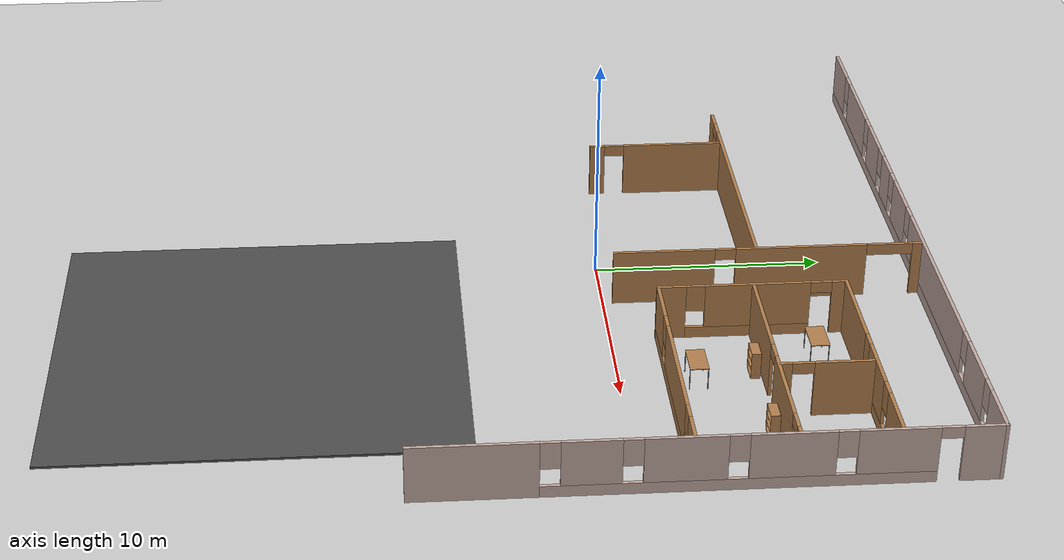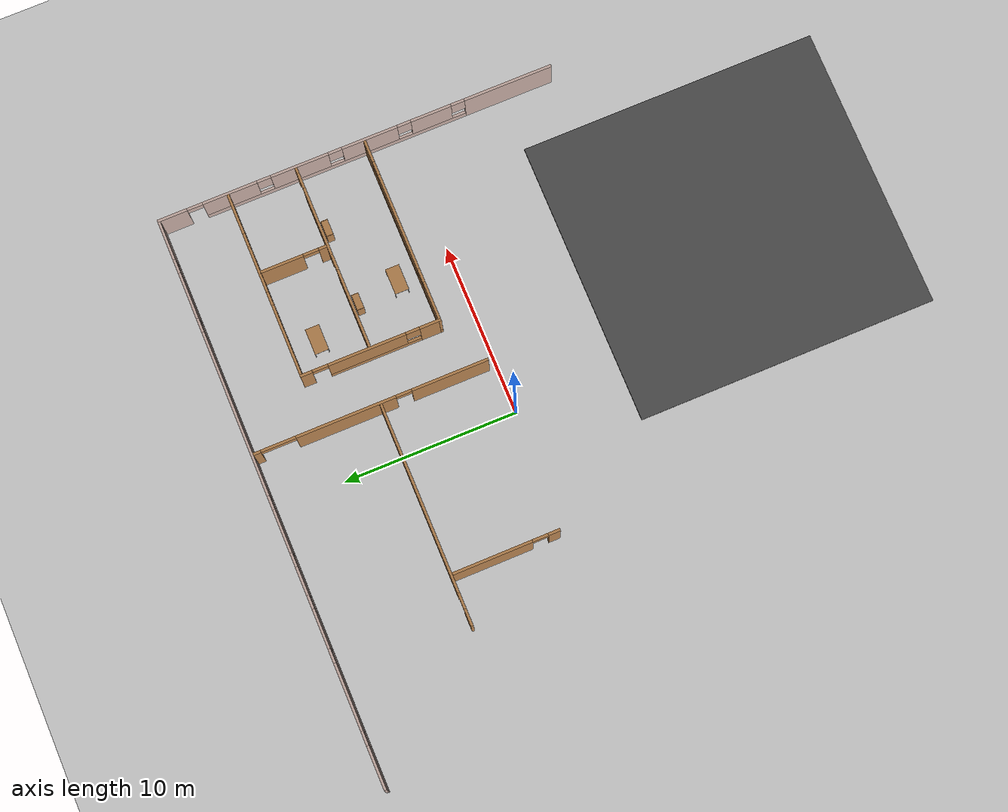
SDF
<sdf version="1.7">
 <world name="default">
  <model name="ground_plane">
   <static>1</static>
   <link name="link">
    <collision name="collision">
     <geometry><plane><normal>0 0 1</normal><size>100 100</size></plane></geometry>
     <surface>
      <contact><collide_bitmask>65535</collide_bitmask></contact>
      <friction><ode><mu>100</mu><mu2>50</mu2></ode></friction>
     </surface>
    </collision>
    <visual name="visual">
     <cast_shadows>0</cast_shadows>
     <geometry><plane><normal>0 0 1</normal><size>100 100</size></plane></geometry>
     <material>
      <script><uri>file://media/materials/scripts/gazebo.material</uri><name>Gazebo/Grey</name></script>
     </material>
    </visual>
   </link>
  </model>
  <model name="Office">
   <pose>0.30406 -0.9941 0 0 -0 0</pose>
   <link name="Wall_28">
    <pose>10.925 3 0 0 -0 3.14159</pose>
    <visual name="Wall_28_Visual_0">
     <pose>-4.84691 0 1.25 0 -0 0</pose>
     <geometry><box><size>1.30617 0.15 2.5</size></box></geometry>
     <material>
      <script><uri>file://media/materials/scripts/gazebo.material</uri><name>Gazebo/Wood</name></script>
      <ambient>1 1 1 1</ambient>
     </material>
     <meta><layer>0</layer></meta>
    </visual>
    <collision name="Wall_28_Collision_0">
     <geometry><box><size>1.30617 0.15 2.5</size></box></geometry>
     <pose>-4.84691 0 1.25 0 -0 0</pose>
    </collision>
    <visual name="Wall_28_Visual_1">
     <pose>0.653086 0 0.25 0 -0 0</pose>
     <geometry><box><size>9.69383 0.15 0.5</size></box></geometry>
     <material>
      <script><uri>file://media/materials/scripts/gazebo.material</uri><name>Gazebo/Wood</name></script>
      <ambient>1 1 1 1</ambient>
     </material>
     <meta><layer>0</layer></meta>
    </visual>
    <collision name="Wall_28_Collision_1">
     <geometry><box><size>9.69383 0.15 0.5</size></box></geometry>
     <pose>0.653086 0 0.25 0 -0 0</pose>
    </collision>
    <visual name="Wall_28_Visual_2">
     <pose>-0.525148 0 1.5 0 -0 0</pose>
     <geometry><box><size>5.73736 0.15 2</size></box></geometry>
     <material>
      <script><uri>file://media/materials/scripts/gazebo.material</uri><name>Gazebo/Wood</name></script>
      <ambient>1 1 1 1</ambient>
     </material>
     <meta><layer>0</layer></meta>
    </visual>
    <collision name="Wall_28_Collision_2">
     <geometry><box><size>5.73736 0.15 2</size></box></geometry>
     <pose>-0.525148 0 1.5 0 -0 0</pose>
    </collision>
    <visual name="Wall_28_Visual_3">
     <pose>4.32177 0 1.5 0 -0 0</pose>
     <geometry><box><size>2.35647 0.15 2</size></box></geometry>
     <material>
      <script><uri>file://media/materials/scripts/gazebo.material</uri><name>Gazebo/Wood</name></script>
      <ambient>1 1 1 1</ambient>
     </material>
     <meta><layer>0</layer></meta>
    </visual>
    <collision name="Wall_28_Collision_3">
     <geometry><box><size>2.35647 0.15 2</size></box></geometry>
     <pose>4.32177 0 1.5 0 -0 0</pose>
    </collision>
    <visual name="Wall_28_Visual_4">
     <pose>-3.79383 0 1.9 0 -0 0</pose>
     <geometry><box><size>0.8 0.15 1.2</size></box></geometry>
     <material>
      <script><uri>file://media/materials/scripts/gazebo.material</uri><name>Gazebo/Wood</name></script>
      <ambient>1 1 1 1</ambient>
     </material>
     <meta><layer>0</layer></meta>
    </visual>
    <collision name="Wall_28_Collision_4">
     <geometry><box><size>0.8 0.15 1.2</size></box></geometry>
     <pose>-3.79383 0 1.9 0 -0 0</pose>
    </collision>
    <visual name="Wall_28_Visual_5">
     <pose>2.74353 0 1.9 0 -0 0</pose>
     <geometry><box><size>0.8 0.15 1.2</size></box></geometry>
     <material>
      <script><uri>file://media/materials/scripts/gazebo.material</uri><name>Gazebo/Wood</name></script>
      <ambient>1 1 1 1</ambient>
     </material>
     <meta><layer>0</layer></meta>
    </visual>
    <collision name="Wall_28_Collision_5">
     <geometry><box><size>0.8 0.15 1.2</size></box></geometry>
     <pose>2.74353 0 1.9 0 -0 0</pose>
    </collision>
   </link>
   <link name="Wall_29">
    <pose>5.5 7 0 0 -0 1.5708</pose>
    <visual name="Wall_29_Visual_0">
     <pose>-3.44549 0 1.25 0 -0 0</pose>
     <geometry><box><size>1.25902 0.15 2.5</size></box></geometry>
     <material>
      <script><uri>file://media/materials/scripts/gazebo.material</uri><name>Gazebo/Wood</name></script>
      <ambient>1 1 1 1</ambient>
     </material>
     <meta><layer>0</layer></meta>
    </visual>
    <collision name="Wall_29_Collision_0">
     <geometry><box><size>1.25902 0.15 2.5</size></box></geometry>
     <pose>-3.44549 0 1.25 0 -0 0</pose>
    </collision>
    <visual name="Wall_29_Visual_1">
     <pose>3.72696 0 1.25 0 -0 0</pose>
     <geometry><box><size>0.696084 0.15 2.5</size></box></geometry>
     <material>
      <script><uri>file://media/materials/scripts/gazebo.material</uri><name>Gazebo/Wood</name></script>
      <ambient>1 1 1 1</ambient>
     </material>
     <meta><layer>0</layer></meta>
    </visual>
    <collision name="Wall_29_Collision_1">
     <geometry><box><size>0.696084 0.15 2.5</size></box></geometry>
     <pose>3.72696 0 1.25 0 -0 0</pose>
    </collision>
    <visual name="Wall_29_Visual_2">
     <pose>-0.168534 0 0.25 0 -0 0</pose>
     <geometry><box><size>5.2949 0.15 0.5</size></box></geometry>
     <material>
      <script><uri>file://media/materials/scripts/gazebo.material</uri><name>Gazebo/Wood</name></script>
      <ambient>1 1 1 1</ambient>
     </material>
     <meta><layer>0</layer></meta>
    </visual>
    <collision name="Wall_29_Collision_2">
     <geometry><box><size>5.2949 0.15 0.5</size></box></geometry>
     <pose>-0.168534 0 0.25 0 -0 0</pose>
    </collision>
    <visual name="Wall_29_Visual_3">
     <pose>0.231466 0 1.5 0 -0 0</pose>
     <geometry><box><size>4.4949 0.15 2</size></box></geometry>
     <material>
      <script><uri>file://media/materials/scripts/gazebo.material</uri><name>Gazebo/Wood</name></script>
      <ambient>1 1 1 1</ambient>
     </material>
     <meta><layer>0</layer></meta>
    </visual>
    <collision name="Wall_29_Collision_3">
     <geometry><box><size>4.4949 0.15 2</size></box></geometry>
     <pose>0.231466 0 1.5 0 -0 0</pose>
    </collision>
    <visual name="Wall_29_Visual_4">
     <pose>-2.41598 0 1.9 0 -0 0</pose>
     <geometry><box><size>0.8 0.15 1.2</size></box></geometry>
     <material>
      <script><uri>file://media/materials/scripts/gazebo.material</uri><name>Gazebo/Wood</name></script>
      <ambient>1 1 1 1</ambient>
     </material>
     <meta><layer>0</layer></meta>
    </visual>
    <collision name="Wall_29_Collision_4">
     <geometry><box><size>0.8 0.15 1.2</size></box></geometry>
     <pose>-2.41598 0 1.9 0 -0 0</pose>
    </collision>
    <visual name="Wall_29_Visual_5">
     <pose>2.92892 0 2.25 0 -0 0</pose>
     <geometry><box><size>0.9 0.15 0.5</size></box></geometry>
     <material>
      <script><uri>file://media/materials/scripts/gazebo.material</uri><name>Gazebo/Wood</name></script>
      <ambient>1 1 1 1</ambient>
     </material>
     <meta><layer>0</layer></meta>
    </visual>
    <collision name="Wall_29_Collision_5">
     <geometry><box><size>0.9 0.15 0.5</size></box></geometry>
     <pose>2.92892 0 2.25 0 -0 0</pose>
    </collision>
   </link>
   <link name="Wall_3">
    <pose>16.5 3.5 0 0 -0 1.5708</pose>
    <visual name="Wall_3_Visual_0">
     <pose>-8.99285 0 1.25 0 -0 0</pose>
     <geometry><box><size>5.16431 0.15 2.5</size></box></geometry>
     <material>
      <script><uri>file://media/materials/scripts/gazebo.material</uri><name>Gazebo/Grey</name></script>
      <ambient>0.760784 0.662745 0.627451 1</ambient>
     </material>
     <meta><layer>0</layer></meta>
    </visual>
    <collision name="Wall_3_Collision_0">
     <geometry><box><size>5.16431 0.15 2.5</size></box></geometry>
     <pose>-8.99285 0 1.25 0 -0 0</pose>
    </collision>
    <visual name="Wall_3_Visual_1">
     <pose>10.7143 0 1.25 0 -0 0</pose>
     <geometry><box><size>1.72148 0.15 2.5</size></box></geometry>
     <material>
      <script><uri>file://media/materials/scripts/gazebo.material</uri><name>Gazebo/Grey</name></script>
      <ambient>0.760784 0.662745 0.627451 1</ambient>
     </material>
     <meta><layer>0</layer></meta>
    </visual>
    <collision name="Wall_3_Collision_1">
     <geometry><box><size>1.72148 0.15 2.5</size></box></geometry>
     <pose>10.7143 0 1.25 0 -0 0</pose>
    </collision>
    <visual name="Wall_3_Visual_2">
     <pose>1.27141 0 0.25 0 -0 0</pose>
     <geometry><box><size>15.3642 0.15 0.5</size></box></geometry>
     <material>
      <script><uri>file://media/materials/scripts/gazebo.material</uri><name>Gazebo/Grey</name></script>
      <ambient>0.760784 0.662745 0.627451 1</ambient>
     </material>
     <meta><layer>0</layer></meta>
    </visual>
    <collision name="Wall_3_Collision_2">
     <geometry><box><size>15.3642 0.15 0.5</size></box></geometry>
     <pose>1.27141 0 0.25 0 -0 0</pose>
    </collision>
    <visual name="Wall_3_Visual_3">
     <pose>-4.42189 0 1.5 0 -0 0</pose>
     <geometry><box><size>2.3776 0.15 2</size></box></geometry>
     <material>
      <script><uri>file://media/materials/scripts/gazebo.material</uri><name>Gazebo/Grey</name></script>
      <ambient>0.760784 0.662745 0.627451 1</ambient>
     </material>
     <meta><layer>0</layer></meta>
    </visual>
    <collision name="Wall_3_Collision_3">
     <geometry><box><size>2.3776 0.15 2</size></box></geometry>
     <pose>-4.42189 0 1.5 0 -0 0</pose>
    </collision>
    <visual name="Wall_3_Visual_4">
     <pose>-0.80608 0 1.5 0 -0 0</pose>
     <geometry><box><size>3.25401 0.15 2</size></box></geometry>
     <material>
      <script><uri>file://media/materials/scripts/gazebo.material</uri><name>Gazebo/Grey</name></script>
      <ambient>0.760784 0.662745 0.627451 1</ambient>
     </material>
     <meta><layer>0</layer></meta>
    </visual>
    <collision name="Wall_3_Collision_4">
     <geometry><box><size>3.25401 0.15 2</size></box></geometry>
     <pose>-0.80608 0 1.5 0 -0 0</pose>
    </collision>
    <visual name="Wall_3_Visual_5">
     <pose>3.30392 0 1.5 0 -0 0</pose>
     <geometry><box><size>3.36599 0.15 2</size></box></geometry>
     <material>
      <script><uri>file://media/materials/scripts/gazebo.material</uri><name>Gazebo/Grey</name></script>
      <ambient>0.760784 0.662745 0.627451 1</ambient>
     </material>
     <meta><layer>0</layer></meta>
    </visual>
    <collision name="Wall_3_Collision_5">
     <geometry><box><size>3.36599 0.15 2</size></box></geometry>
     <pose>3.30392 0 1.5 0 -0 0</pose>
    </collision>
    <visual name="Wall_3_Visual_6">
     <pose>7.37022 0 1.5 0 -0 0</pose>
     <geometry><box><size>3.1666 0.15 2</size></box></geometry>
     <material>
      <script><uri>file://media/materials/scripts/gazebo.material</uri><name>Gazebo/Grey</name></script>
      <ambient>0.760784 0.662745 0.627451 1</ambient>
     </material>
     <meta><layer>0</layer></meta>
    </visual>
    <collision name="Wall_3_Collision_6">
     <geometry><box><size>3.1666 0.15 2</size></box></geometry>
     <pose>7.37022 0 1.5 0 -0 0</pose>
    </collision>
    <visual name="Wall_3_Visual_7">
     <pose>-6.01069 0 1.9 0 -0 0</pose>
     <geometry><box><size>0.8 0.15 1.2</size></box></geometry>
     <material>
      <script><uri>file://media/materials/scripts/gazebo.material</uri><name>Gazebo/Grey</name></script>
      <ambient>0.760784 0.662745 0.627451 1</ambient>
     </material>
     <meta><layer>0</layer></meta>
    </visual>
    <collision name="Wall_3_Collision_7">
     <geometry><box><size>0.8 0.15 1.2</size></box></geometry>
     <pose>-6.01069 0 1.9 0 -0 0</pose>
    </collision>
    <visual name="Wall_3_Visual_8">
     <pose>-2.83308 0 1.9 0 -0 0</pose>
     <geometry><box><size>0.8 0.15 1.2</size></box></geometry>
     <material>
      <script><uri>file://media/materials/scripts/gazebo.material</uri><name>Gazebo/Grey</name></script>
      <ambient>0.760784 0.662745 0.627451 1</ambient>
     </material>
     <meta><layer>0</layer></meta>
    </visual>
    <collision name="Wall_3_Collision_8">
     <geometry><box><size>0.8 0.15 1.2</size></box></geometry>
     <pose>-2.83308 0 1.9 0 -0 0</pose>
    </collision>
    <visual name="Wall_3_Visual_9">
     <pose>1.22093 0 1.9 0 -0 0</pose>
     <geometry><box><size>0.8 0.15 1.2</size></box></geometry>
     <material>
      <script><uri>file://media/materials/scripts/gazebo.material</uri><name>Gazebo/Grey</name></script>
      <ambient>0.760784 0.662745 0.627451 1</ambient>
     </material>
     <meta><layer>0</layer></meta>
    </visual>
    <collision name="Wall_3_Collision_9">
     <geometry><box><size>0.8 0.15 1.2</size></box></geometry>
     <pose>1.22093 0 1.9 0 -0 0</pose>
    </collision>
    <visual name="Wall_3_Visual_10">
     <pose>5.38691 0 1.9 0 -0 0</pose>
     <geometry><box><size>0.8 0.15 1.2</size></box></geometry>
     <material>
      <script><uri>file://media/materials/scripts/gazebo.material</uri><name>Gazebo/Grey</name></script>
      <ambient>0.760784 0.662745 0.627451 1</ambient>
     </material>
     <meta><layer>0</layer></meta>
    </visual>
    <collision name="Wall_3_Collision_10">
     <geometry><box><size>0.8 0.15 1.2</size></box></geometry>
     <pose>5.38691 0 1.9 0 -0 0</pose>
    </collision>
    <visual name="Wall_3_Visual_11">
     <pose>9.40352 0 2.25 0 -0 0</pose>
     <geometry><box><size>0.9 0.15 0.5</size></box></geometry>
     <material>
      <script><uri>file://media/materials/scripts/gazebo.material</uri><name>Gazebo/Grey</name></script>
      <ambient>0.760784 0.662745 0.627451 1</ambient>
     </material>
     <meta><layer>0</layer></meta>
    </visual>
    <collision name="Wall_3_Collision_11">
     <geometry><box><size>0.9 0.15 0.5</size></box></geometry>
     <pose>9.40352 0 2.25 0 -0 0</pose>
    </collision>
   </link>
   <link name="Wall_30">
    <pose>10.925 11 0 0 -0 0</pose>
    <visual name="Wall_30_Visual_0">
     <pose>-3.35391 0 1.25 0 -0 0</pose>
     <geometry><box><size>4.29219 0.15 2.5</size></box></geometry>
     <material>
      <script><uri>file://media/materials/scripts/gazebo.material</uri><name>Gazebo/Wood</name></script>
      <ambient>1 1 1 1</ambient>
     </material>
     <meta><layer>0</layer></meta>
    </visual>
    <collision name="Wall_30_Collision_0">
     <geometry><box><size>4.29219 0.15 2.5</size></box></geometry>
     <pose>-3.35391 0 1.25 0 -0 0</pose>
    </collision>
    <visual name="Wall_30_Visual_1">
     <pose>2.1461 0 0.25 0 -0 0</pose>
     <geometry><box><size>6.70781 0.15 0.5</size></box></geometry>
     <material>
      <script><uri>file://media/materials/scripts/gazebo.material</uri><name>Gazebo/Wood</name></script>
      <ambient>1 1 1 1</ambient>
     </material>
     <meta><layer>0</layer></meta>
    </visual>
    <collision name="Wall_30_Collision_1">
     <geometry><box><size>6.70781 0.15 0.5</size></box></geometry>
     <pose>2.1461 0 0.25 0 -0 0</pose>
    </collision>
    <visual name="Wall_30_Visual_2">
     <pose>0.957967 0 1.5 0 -0 0</pose>
     <geometry><box><size>2.73155 0.15 2</size></box></geometry>
     <material>
      <script><uri>file://media/materials/scripts/gazebo.material</uri><name>Gazebo/Wood</name></script>
      <ambient>1 1 1 1</ambient>
     </material>
     <meta><layer>0</layer></meta>
    </visual>
    <collision name="Wall_30_Collision_2">
     <geometry><box><size>2.73155 0.15 2</size></box></geometry>
     <pose>0.957967 0 1.5 0 -0 0</pose>
    </collision>
    <visual name="Wall_30_Visual_3">
     <pose>4.31187 0 1.5 0 -0 0</pose>
     <geometry><box><size>2.37626 0.15 2</size></box></geometry>
     <material>
      <script><uri>file://media/materials/scripts/gazebo.material</uri><name>Gazebo/Wood</name></script>
      <ambient>1 1 1 1</ambient>
     </material>
     <meta><layer>0</layer></meta>
    </visual>
    <collision name="Wall_30_Collision_3">
     <geometry><box><size>2.37626 0.15 2</size></box></geometry>
     <pose>4.31187 0 1.5 0 -0 0</pose>
    </collision>
    <visual name="Wall_30_Visual_4">
     <pose>-0.80781 0 1.9 0 -0 0</pose>
     <geometry><box><size>0.8 0.15 1.2</size></box></geometry>
     <material>
      <script><uri>file://media/materials/scripts/gazebo.material</uri><name>Gazebo/Wood</name></script>
      <ambient>1 1 1 1</ambient>
     </material>
     <meta><layer>0</layer></meta>
    </visual>
    <collision name="Wall_30_Collision_4">
     <geometry><box><size>0.8 0.15 1.2</size></box></geometry>
     <pose>-0.80781 0 1.9 0 -0 0</pose>
    </collision>
    <visual name="Wall_30_Visual_5">
     <pose>2.72374 0 1.9 0 -0 0</pose>
     <geometry><box><size>0.8 0.15 1.2</size></box></geometry>
     <material>
      <script><uri>file://media/materials/scripts/gazebo.material</uri><name>Gazebo/Wood</name></script>
      <ambient>1 1 1 1</ambient>
     </material>
     <meta><layer>0</layer></meta>
    </visual>
    <collision name="Wall_30_Collision_5">
     <geometry><box><size>0.8 0.15 1.2</size></box></geometry>
     <pose>2.72374 0 1.9 0 -0 0</pose>
    </collision>
   </link>
   <link name="Wall_32">
    <pose>2.5 8.175 0 0 -0 -1.5708</pose>
    <visual name="Wall_32_Visual_0">
     <pose>-6.5375 0 1.25 0 -0 0</pose>
     <geometry><box><size>0.425 0.15 2.5</size></box></geometry>
     <material>
      <script><uri>file://media/materials/scripts/gazebo.material</uri><name>Gazebo/Wood</name></script>
      <ambient>1 1 1 1</ambient>
     </material>
     <meta><layer>0</layer></meta>
    </visual>
    <collision name="Wall_32_Collision_0">
     <geometry><box><size>0.425 0.15 2.5</size></box></geometry>
     <pose>-6.5375 0 1.25 0 -0 0</pose>
    </collision>
    <visual name="Wall_32_Visual_1">
     <pose>-1.45325 0 1.25 0 -0 0</pose>
     <geometry><box><size>5.7435 0.15 2.5</size></box></geometry>
     <material>
      <script><uri>file://media/materials/scripts/gazebo.material</uri><name>Gazebo/Wood</name></script>
      <ambient>1 1 1 1</ambient>
     </material>
     <meta><layer>0</layer></meta>
    </visual>
    <collision name="Wall_32_Collision_1">
     <geometry><box><size>5.7435 0.15 2.5</size></box></geometry>
     <pose>-1.45325 0 1.25 0 -0 0</pose>
    </collision>
    <visual name="Wall_32_Visual_2">
     <pose>4.53425 0 1.25 0 -0 0</pose>
     <geometry><box><size>4.4315 0.15 2.5</size></box></geometry>
     <material>
      <script><uri>file://media/materials/scripts/gazebo.material</uri><name>Gazebo/Wood</name></script>
      <ambient>1 1 1 1</ambient>
     </material>
     <meta><layer>0</layer></meta>
    </visual>
    <collision name="Wall_32_Collision_2">
     <geometry><box><size>4.4315 0.15 2.5</size></box></geometry>
     <pose>4.53425 0 1.25 0 -0 0</pose>
    </collision>
    <visual name="Wall_32_Visual_3">
     <pose>-5.325 0 2.25 0 -0 0</pose>
     <geometry><box><size>2 0.15 0.5</size></box></geometry>
     <material>
      <script><uri>file://media/materials/scripts/gazebo.material</uri><name>Gazebo/Wood</name></script>
      <ambient>1 1 1 1</ambient>
     </material>
     <meta><layer>0</layer></meta>
    </visual>
    <collision name="Wall_32_Collision_3">
     <geometry><box><size>2 0.15 0.5</size></box></geometry>
     <pose>-5.325 0 2.25 0 -0 0</pose>
    </collision>
    <visual name="Wall_32_Visual_4">
     <pose>1.8685 0 2.25 0 -0 0</pose>
     <geometry><box><size>0.9 0.15 0.5</size></box></geometry>
     <material>
      <script><uri>file://media/materials/scripts/gazebo.material</uri><name>Gazebo/Wood</name></script>
      <ambient>1 1 1 1</ambient>
     </material>
     <meta><layer>0</layer></meta>
    </visual>
    <collision name="Wall_32_Collision_4">
     <geometry><box><size>0.9 0.15 0.5</size></box></geometry>
     <pose>1.8685 0 2.25 0 -0 0</pose>
    </collision>
   </link>
   <link name="Wall_34">
    <pose>-7.5 4.5 0 0 -0 1.5708</pose>
    <visual name="Wall_34_Visual_0">
     <pose>-2.73019 0 1.25 0 -0 0</pose>
     <geometry><box><size>0.689623 0.15 2.5</size></box></geometry>
     <material>
      <script><uri>file://media/materials/scripts/gazebo.material</uri><name>Gazebo/Wood</name></script>
      <ambient>1 1 1 1</ambient>
     </material>
     <meta><layer>0</layer></meta>
    </visual>
    <collision name="Wall_34_Collision_0">
     <geometry><box><size>0.689623 0.15 2.5</size></box></geometry>
     <pose>-2.73019 0 1.25 0 -0 0</pose>
    </collision>
    <visual name="Wall_34_Visual_1">
     <pose>0.794812 0 1.25 0 -0 0</pose>
     <geometry><box><size>4.56038 0.15 2.5</size></box></geometry>
     <material>
      <script><uri>file://media/materials/scripts/gazebo.material</uri><name>Gazebo/Wood</name></script>
      <ambient>1 1 1 1</ambient>
     </material>
     <meta><layer>0</layer></meta>
    </visual>
    <collision name="Wall_34_Collision_1">
     <geometry><box><size>4.56038 0.15 2.5</size></box></geometry>
     <pose>0.794812 0 1.25 0 -0 0</pose>
    </collision>
    <visual name="Wall_34_Visual_2">
     <pose>-1.93538 0 2.25 0 -0 0</pose>
     <geometry><box><size>0.9 0.15 0.5</size></box></geometry>
     <material>
      <script><uri>file://media/materials/scripts/gazebo.material</uri><name>Gazebo/Wood</name></script>
      <ambient>1 1 1 1</ambient>
     </material>
     <meta><layer>0</layer></meta>
    </visual>
    <collision name="Wall_34_Collision_2">
     <geometry><box><size>0.9 0.15 0.5</size></box></geometry>
     <pose>-1.93538 0 2.25 0 -0 0</pose>
    </collision>
   </link>
   <link name="Wall_36">
    <pose>-4 7.65 0 0 -0 0</pose>
    <visual name="Wall_36_Visual_0">
     <pose>-5.93774 0 1.25 0 -0 0</pose>
     <geometry><box><size>0.974511 0.15 2.5</size></box></geometry>
     <material>
      <script><uri>file://media/materials/scripts/gazebo.material</uri><name>Gazebo/Wood</name></script>
      <ambient>1 1 1 1</ambient>
     </material>
     <meta><layer>0</layer></meta>
    </visual>
    <collision name="Wall_36_Collision_0">
     <geometry><box><size>0.974511 0.15 2.5</size></box></geometry>
     <pose>-5.93774 0 1.25 0 -0 0</pose>
    </collision>
    <visual name="Wall_36_Visual_1">
     <pose>0.937255 0 1.25 0 -0 0</pose>
     <geometry><box><size>10.9755 0.15 2.5</size></box></geometry>
     <material>
      <script><uri>file://media/materials/scripts/gazebo.material</uri><name>Gazebo/Wood</name></script>
      <ambient>1 1 1 1</ambient>
     </material>
     <meta><layer>0</layer></meta>
    </visual>
    <collision name="Wall_36_Collision_1">
     <geometry><box><size>10.9755 0.15 2.5</size></box></geometry>
     <pose>0.937255 0 1.25 0 -0 0</pose>
    </collision>
    <visual name="Wall_36_Visual_2">
     <pose>-5.00049 0 2.25 0 -0 0</pose>
     <geometry><box><size>0.9 0.15 0.5</size></box></geometry>
     <material>
      <script><uri>file://media/materials/scripts/gazebo.material</uri><name>Gazebo/Wood</name></script>
      <ambient>1 1 1 1</ambient>
     </material>
     <meta><layer>0</layer></meta>
    </visual>
    <collision name="Wall_36_Collision_2">
     <geometry><box><size>0.9 0.15 0.5</size></box></geometry>
     <pose>-5.00049 0 2.25 0 -0 0</pose>
    </collision>
   </link>
   <link name="Wall_4">
    <pose>0 15 0 0 -0 3.14159</pose>
    <visual name="Wall_4_Visual_0">
     <pose>-15.3518 0 1.25 0 -0 0</pose>
     <geometry><box><size>2.44634 0.15 2.5</size></box></geometry>
     <material>
      <script><uri>file://media/materials/scripts/gazebo.material</uri><name>Gazebo/Grey</name></script>
      <ambient>0.760784 0.662745 0.627451 1</ambient>
     </material>
     <meta><layer>0</layer></meta>
    </visual>
    <collision name="Wall_4_Collision_0">
     <geometry><box><size>2.44634 0.15 2.5</size></box></geometry>
     <pose>-15.3518 0 1.25 0 -0 0</pose>
    </collision>
    <visual name="Wall_4_Visual_1">
     <pose>1.22317 0 0.25 0 -0 0</pose>
     <geometry><box><size>30.7037 0.15 0.5</size></box></geometry>
     <material>
      <script><uri>file://media/materials/scripts/gazebo.material</uri><name>Gazebo/Grey</name></script>
      <ambient>0.760784 0.662745 0.627451 1</ambient>
     </material>
     <meta><layer>0</layer></meta>
    </visual>
    <collision name="Wall_4_Collision_1">
     <geometry><box><size>30.7037 0.15 0.5</size></box></geometry>
     <pose>1.22317 0 0.25 0 -0 0</pose>
    </collision>
    <visual name="Wall_4_Visual_2">
     <pose>-11.9571 0 1.5 0 -0 0</pose>
     <geometry><box><size>2.74312 0.15 2</size></box></geometry>
     <material>
      <script><uri>file://media/materials/scripts/gazebo.material</uri><name>Gazebo/Grey</name></script>
      <ambient>0.760784 0.662745 0.627451 1</ambient>
     </material>
     <meta><layer>0</layer></meta>
    </visual>
    <collision name="Wall_4_Collision_2">
     <geometry><box><size>2.74312 0.15 2</size></box></geometry>
     <pose>-11.9571 0 1.5 0 -0 0</pose>
    </collision>
    <visual name="Wall_4_Visual_3">
     <pose>-4.95138 0 1.5 0 -0 0</pose>
     <geometry><box><size>9.66832 0.15 2</size></box></geometry>
     <material>
      <script><uri>file://media/materials/scripts/gazebo.material</uri><name>Gazebo/Grey</name></script>
      <ambient>0.760784 0.662745 0.627451 1</ambient>
     </material>
     <meta><layer>0</layer></meta>
    </visual>
    <collision name="Wall_4_Collision_3">
     <geometry><box><size>9.66832 0.15 2</size></box></geometry>
     <pose>-4.95138 0 1.5 0 -0 0</pose>
    </collision>
    <visual name="Wall_4_Visual_4">
     <pose>1.93356 0 1.5 0 -0 0</pose>
     <geometry><box><size>2.50155 0.15 2</size></box></geometry>
     <material>
      <script><uri>file://media/materials/scripts/gazebo.material</uri><name>Gazebo/Grey</name></script>
      <ambient>0.760784 0.662745 0.627451 1</ambient>
     </material>
     <meta><layer>0</layer></meta>
    </visual>
    <collision name="Wall_4_Collision_4">
     <geometry><box><size>2.50155 0.15 2</size></box></geometry>
     <pose>1.93356 0 1.5 0 -0 0</pose>
    </collision>
    <visual name="Wall_4_Visual_5">
     <pose>4.79221 0 1.5 0 -0 0</pose>
     <geometry><box><size>1.61577 0.15 2</size></box></geometry>
     <material>
      <script><uri>file://media/materials/scripts/gazebo.material</uri><name>Gazebo/Grey</name></script>
      <ambient>0.760784 0.662745 0.627451 1</ambient>
     </material>
     <meta><layer>0</layer></meta>
    </visual>
    <collision name="Wall_4_Collision_5">
     <geometry><box><size>1.61577 0.15 2</size></box></geometry>
     <pose>4.79221 0 1.5 0 -0 0</pose>
    </collision>
    <visual name="Wall_4_Visual_6">
     <pose>7.53008 0 1.5 0 -0 0</pose>
     <geometry><box><size>2.25997 0.15 2</size></box></geometry>
     <material>
      <script><uri>file://media/materials/scripts/gazebo.material</uri><name>Gazebo/Grey</name></script>
      <ambient>0.760784 0.662745 0.627451 1</ambient>
     </material>
     <meta><layer>0</layer></meta>
    </visual>
    <collision name="Wall_4_Collision_6">
     <geometry><box><size>2.25997 0.15 2</size></box></geometry>
     <pose>7.53008 0 1.5 0 -0 0</pose>
    </collision>
    <visual name="Wall_4_Visual_7">
     <pose>11.3752 0 1.5 0 -0 0</pose>
     <geometry><box><size>3.83029 0.15 2</size></box></geometry>
     <material>
      <script><uri>file://media/materials/scripts/gazebo.material</uri><name>Gazebo/Grey</name></script>
      <ambient>0.760784 0.662745 0.627451 1</ambient>
     </material>
     <meta><layer>0</layer></meta>
    </visual>
    <collision name="Wall_4_Collision_7">
     <geometry><box><size>3.83029 0.15 2</size></box></geometry>
     <pose>11.3752 0 1.5 0 -0 0</pose>
    </collision>
    <visual name="Wall_4_Visual_8">
     <pose>15.3327 0 1.5 0 -0 0</pose>
     <geometry><box><size>2.48464 0.15 2</size></box></geometry>
     <material>
      <script><uri>file://media/materials/scripts/gazebo.material</uri><name>Gazebo/Grey</name></script>
      <ambient>0.760784 0.662745 0.627451 1</ambient>
     </material>
     <meta><layer>0</layer></meta>
    </visual>
    <collision name="Wall_4_Collision_8">
     <geometry><box><size>2.48464 0.15 2</size></box></geometry>
     <pose>15.3327 0 1.5 0 -0 0</pose>
    </collision>
    <visual name="Wall_4_Visual_9">
     <pose>-13.7287 0 1.9 0 -0 0</pose>
     <geometry><box><size>0.8 0.15 1.2</size></box></geometry>
     <material>
      <script><uri>file://media/materials/scripts/gazebo.material</uri><name>Gazebo/Grey</name></script>
      <ambient>0.760784 0.662745 0.627451 1</ambient>
     </material>
     <meta><layer>0</layer></meta>
    </visual>
    <collision name="Wall_4_Collision_9">
     <geometry><box><size>0.8 0.15 1.2</size></box></geometry>
     <pose>-13.7287 0 1.9 0 -0 0</pose>
    </collision>
    <visual name="Wall_4_Visual_10">
     <pose>-10.1855 0 1.9 0 -0 0</pose>
     <geometry><box><size>0.8 0.15 1.2</size></box></geometry>
     <material>
      <script><uri>file://media/materials/scripts/gazebo.material</uri><name>Gazebo/Grey</name></script>
      <ambient>0.760784 0.662745 0.627451 1</ambient>
     </material>
     <meta><layer>0</layer></meta>
    </visual>
    <collision name="Wall_4_Collision_10">
     <geometry><box><size>0.8 0.15 1.2</size></box></geometry>
     <pose>-10.1855 0 1.9 0 -0 0</pose>
    </collision>
    <visual name="Wall_4_Visual_11">
     <pose>0.282784 0 1.9 0 -0 0</pose>
     <geometry><box><size>0.8 0.15 1.2</size></box></geometry>
     <material>
      <script><uri>file://media/materials/scripts/gazebo.material</uri><name>Gazebo/Grey</name></script>
      <ambient>0.760784 0.662745 0.627451 1</ambient>
     </material>
     <meta><layer>0</layer></meta>
    </visual>
    <collision name="Wall_4_Collision_11">
     <geometry><box><size>0.8 0.15 1.2</size></box></geometry>
     <pose>0.282784 0 1.9 0 -0 0</pose>
    </collision>
    <visual name="Wall_4_Visual_12">
     <pose>3.58433 0 1.9 0 -0 0</pose>
     <geometry><box><size>0.8 0.15 1.2</size></box></geometry>
     <material>
      <script><uri>file://media/materials/scripts/gazebo.material</uri><name>Gazebo/Grey</name></script>
      <ambient>0.760784 0.662745 0.627451 1</ambient>
     </material>
     <meta><layer>0</layer></meta>
    </visual>
    <collision name="Wall_4_Collision_12">
     <geometry><box><size>0.8 0.15 1.2</size></box></geometry>
     <pose>3.58433 0 1.9 0 -0 0</pose>
    </collision>
    <visual name="Wall_4_Visual_13">
     <pose>6.0001 0 1.9 0 -0 0</pose>
     <geometry><box><size>0.8 0.15 1.2</size></box></geometry>
     <material>
      <script><uri>file://media/materials/scripts/gazebo.material</uri><name>Gazebo/Grey</name></script>
      <ambient>0.760784 0.662745 0.627451 1</ambient>
     </material>
     <meta><layer>0</layer></meta>
    </visual>
    <collision name="Wall_4_Collision_13">
     <geometry><box><size>0.8 0.15 1.2</size></box></geometry>
     <pose>6.0001 0 1.9 0 -0 0</pose>
    </collision>
    <visual name="Wall_4_Visual_14">
     <pose>9.06007 0 1.9 0 -0 0</pose>
     <geometry><box><size>0.8 0.15 1.2</size></box></geometry>
     <material>
      <script><uri>file://media/materials/scripts/gazebo.material</uri><name>Gazebo/Grey</name></script>
      <ambient>0.760784 0.662745 0.627451 1</ambient>
     </material>
     <meta><layer>0</layer></meta>
    </visual>
    <collision name="Wall_4_Collision_14">
     <geometry><box><size>0.8 0.15 1.2</size></box></geometry>
     <pose>9.06007 0 1.9 0 -0 0</pose>
    </collision>
    <visual name="Wall_4_Visual_15">
     <pose>13.6904 0 1.9 0 -0 0</pose>
     <geometry><box><size>0.8 0.15 1.2</size></box></geometry>
     <material>
      <script><uri>file://media/materials/scripts/gazebo.material</uri><name>Gazebo/Grey</name></script>
      <ambient>0.760784 0.662745 0.627451 1</ambient>
     </material>
     <meta><layer>0</layer></meta>
    </visual>
    <collision name="Wall_4_Collision_15">
     <geometry><box><size>0.8 0.15 1.2</size></box></geometry>
     <pose>13.6904 0 1.9 0 -0 0</pose>
    </collision>
   </link>
   <link name="Wall_51">
    <pose>11 7.036 0 0 -0 0</pose>
    <visual name="Wall_51_Visual_0">
     <pose>-3.1003 0 1.25 0 -0 0</pose>
     <geometry><box><size>4.6494 0.15 2.5</size></box></geometry>
     <material>
      <script><uri>file://media/materials/scripts/gazebo.material</uri><name>Gazebo/Wood</name></script>
      <ambient>1 1 1 1</ambient>
     </material>
     <meta><layer>0</layer></meta>
    </visual>
    <collision name="Wall_51_Collision_0">
     <geometry><box><size>4.6494 0.15 2.5</size></box></geometry>
     <pose>-3.1003 0 1.25 0 -0 0</pose>
    </collision>
    <visual name="Wall_51_Visual_1">
     <pose>2.16176 0 1.25 0 -0 0</pose>
     <geometry><box><size>4.07471 0.15 2.5</size></box></geometry>
     <material>
      <script><uri>file://media/materials/scripts/gazebo.material</uri><name>Gazebo/Wood</name></script>
      <ambient>1 1 1 1</ambient>
     </material>
     <meta><layer>0</layer></meta>
    </visual>
    <collision name="Wall_51_Collision_1">
     <geometry><box><size>4.07471 0.15 2.5</size></box></geometry>
     <pose>2.16176 0 1.25 0 -0 0</pose>
    </collision>
    <visual name="Wall_51_Visual_2">
     <pose>5.26206 0 1.25 0 -0 0</pose>
     <geometry><box><size>0.325885 0.15 2.5</size></box></geometry>
     <material>
      <script><uri>file://media/materials/scripts/gazebo.material</uri><name>Gazebo/Wood</name></script>
      <ambient>1 1 1 1</ambient>
     </material>
     <meta><layer>0</layer></meta>
    </visual>
    <collision name="Wall_51_Collision_2">
     <geometry><box><size>0.325885 0.15 2.5</size></box></geometry>
     <pose>5.26206 0 1.25 0 -0 0</pose>
    </collision>
    <visual name="Wall_51_Visual_3">
     <pose>-0.325597 0 2.25 0 -0 0</pose>
     <geometry><box><size>0.9 0.15 0.5</size></box></geometry>
     <material>
      <script><uri>file://media/materials/scripts/gazebo.material</uri><name>Gazebo/Wood</name></script>
      <ambient>1 1 1 1</ambient>
     </material>
     <meta><layer>0</layer></meta>
    </visual>
    <collision name="Wall_51_Collision_3">
     <geometry><box><size>0.9 0.15 0.5</size></box></geometry>
     <pose>-0.325597 0 2.25 0 -0 0</pose>
    </collision>
    <visual name="Wall_51_Visual_4">
     <pose>4.64912 0 2.25 0 -0 0</pose>
     <geometry><box><size>0.9 0.15 0.5</size></box></geometry>
     <material>
      <script><uri>file://media/materials/scripts/gazebo.material</uri><name>Gazebo/Wood</name></script>
      <ambient>1 1 1 1</ambient>
     </material>
     <meta><layer>0</layer></meta>
    </visual>
    <collision name="Wall_51_Collision_4">
     <geometry><box><size>0.9 0.15 0.5</size></box></geometry>
     <pose>4.64912 0 2.25 0 -0 0</pose>
    </collision>
   </link>
   <link name="Wall_53">
    <pose>11.6817 8.96252 0 0 -0 1.5708</pose>
    <visual name="Wall_53_Visual_0">
     <pose>-1.69286 0 1.25 0 -0 0</pose>
     <geometry><box><size>0.614284 0.15 2.5</size></box></geometry>
     <material>
      <script><uri>file://media/materials/scripts/gazebo.material</uri><name>Gazebo/Wood</name></script>
      <ambient>1 1 1 1</ambient>
     </material>
     <meta><layer>0</layer></meta>
    </visual>
    <collision name="Wall_53_Collision_0">
     <geometry><box><size>0.614284 0.15 2.5</size></box></geometry>
     <pose>-1.69286 0 1.25 0 -0 0</pose>
    </collision>
    <visual name="Wall_53_Visual_1">
     <pose>0.757142 0 1.25 0 -0 0</pose>
     <geometry><box><size>2.48572 0.15 2.5</size></box></geometry>
     <material>
      <script><uri>file://media/materials/scripts/gazebo.material</uri><name>Gazebo/Wood</name></script>
      <ambient>1 1 1 1</ambient>
     </material>
     <meta><layer>0</layer></meta>
    </visual>
    <collision name="Wall_53_Collision_1">
     <geometry><box><size>2.48572 0.15 2.5</size></box></geometry>
     <pose>0.757142 0 1.25 0 -0 0</pose>
    </collision>
    <visual name="Wall_53_Visual_2">
     <pose>-0.935716 0 2.25 0 -0 0</pose>
     <geometry><box><size>0.9 0.15 0.5</size></box></geometry>
     <material>
      <script><uri>file://media/materials/scripts/gazebo.material</uri><name>Gazebo/Wood</name></script>
      <ambient>1 1 1 1</ambient>
     </material>
     <meta><layer>0</layer></meta>
    </visual>
    <collision name="Wall_53_Collision_2">
     <geometry><box><size>0.9 0.15 0.5</size></box></geometry>
     <pose>-0.935716 0 2.25 0 -0 0</pose>
    </collision>
   </link>
   <static>1</static>
  </model>
  <model name="asphalt_plane">
   <static>1</static>
   <link name="link">
    <collision name="collision"><geometry><box><size>16.6553 17.3976 0.1</size></box></geometry></collision>
    <visual name="visual">
     <cast_shadows>0</cast_shadows>
     <geometry><box><size>16.6553 17.3976 0.1</size></box></geometry>
     <material>
      <script>
       <uri>model://asphalt_plane/materials/scripts</uri>
       <uri>model://asphalt_plane/materials/textures</uri>
       <name>vrc/asphalt</name>
      </script>
     </material>
    </visual>
   </link>
   <pose>5.32516 -14.8382 0 0 -0 0</pose>
  </model>
  <model name="table_clone_2">
   <static>1</static>
   <link name="link">
    <collision name="surface">
     <pose>0 0 1 0 -0 0</pose>
     <geometry><box><size>1.5 0.8 0.03</size></box></geometry>
     <surface><friction><ode><mu>0.6</mu><mu2>0.6</mu2></ode></friction></surface>
    </collision>
    <visual name="visual1">
     <pose>0 0 1 0 -0 0</pose>
     <geometry><box><size>1.5 0.8 0.03</size></box></geometry>
     <material>
      <script><uri>file://media/materials/scripts/gazebo.material</uri><name>Gazebo/Wood</name></script>
     </material>
    </visual>
    <collision name="front_left_leg">
     <pose>0.68 0.38 0.5 0 -0 0</pose>
     <geometry><cylinder><radius>0.02</radius><length>1</length></cylinder></geometry>
    </collision>
    <visual name="front_left_legv">
     <pose>0.68 0.38 0.5 0 -0 0</pose>
     <geometry><cylinder><radius>0.02</radius><length>1</length></cylinder></geometry>
     <material>
      <script><uri>file://media/materials/scripts/gazebo.material</uri><name>Gazebo/Grey</name></script>
     </material>
    </visual>
    <collision name="front_right_leg">
     <pose>0.68 -0.38 0.5 0 -0 0</pose>
     <geometry><cylinder><radius>0.02</radius><length>1</length></cylinder></geometry>
    </collision>
    <visual name="front_right_legv">
     <pose>0.68 -0.38 0.5 0 -0 0</pose>
     <geometry><cylinder><radius>0.02</radius><length>1</length></cylinder></geometry>
     <material>
      <script><uri>file://media/materials/scripts/gazebo.material</uri><name>Gazebo/Grey</name></script>
     </material>
    </visual>
    <collision name="back_right_leg">
     <pose>-0.68 -0.38 0.5 0 -0 0</pose>
     <geometry><cylinder><radius>0.02</radius><length>1</length></cylinder></geometry>
    </collision>
    <visual name="back_right_legv">
     <pose>-0.68 -0.38 0.5 0 -0 0</pose>
     <geometry><cylinder><radius>0.02</radius><length>1</length></cylinder></geometry>
     <material>
      <script><uri>file://media/materials/scripts/gazebo.material</uri><name>Gazebo/Grey</name></script>
     </material>
    </visual>
    <collision name="back_left_leg">
     <pose>-0.68 0.38 0.5 0 -0 0</pose>
     <geometry><cylinder><radius>0.02</radius><length>1</length></cylinder></geometry>
    </collision>
    <visual name="back_left_legv">
     <pose>-0.68 0.38 0.5 0 -0 0</pose>
     <geometry><cylinder><radius>0.02</radius><length>1</length></cylinder></geometry>
     <material>
      <script><uri>file://media/materials/scripts/gazebo.material</uri><name>Gazebo/Grey</name></script>
     </material>
    </visual>
   </link>
   <pose>9.18065 3.22722 0 0 -0 0</pose>
  </model>
  <model name="bookshelf">
   <static>1</static>
   <link name="link">
    <inertial><mass>1</mass></inertial>
    <collision name="back">
     <pose>0 0.005 0.6 0 -0 0</pose>
     <geometry><box><size>0.9 0.01 1.2</size></box></geometry>
    </collision>
    <visual name="visual1">
     <pose>0 0.005 0.6 0 -0 0</pose>
     <geometry><box><size>0.9 0.01 1.2</size></box></geometry>
     <material>
      <script><uri>file://media/materials/scripts/gazebo.material</uri><name>Gazebo/Wood</name></script>
     </material>
    </visual>
    <collision name="left_side">
     <pose>0.45 -0.195 0.6 0 -0 0</pose>
     <geometry><box><size>0.02 0.4 1.2</size></box></geometry>
    </collision>
    <visual name="visual2">
     <pose>0.45 -0.195 0.6 0 -0 0</pose>
     <geometry><box><size>0.02 0.4 1.2</size></box></geometry>
     <material>
      <script><uri>file://media/materials/scripts/gazebo.material</uri><name>Gazebo/Wood</name></script>
     </material>
    </visual>
    <collision name="right_side">
     <pose>-0.45 -0.195 0.6 0 -0 0</pose>
     <geometry><box><size>0.02 0.4 1.2</size></box></geometry>
    </collision>
    <visual name="visual3">
     <pose>-0.45 -0.195 0.6 0 -0 0</pose>
     <geometry><box><size>0.02 0.4 1.2</size></box></geometry>
     <material>
      <script><uri>file://media/materials/scripts/gazebo.material</uri><name>Gazebo/Wood</name></script>
     </material>
    </visual>
    <collision name="bottom">
     <pose>0 -0.195 0.03 0 -0 0</pose>
     <geometry><box><size>0.88 0.4 0.06</size></box></geometry>
    </collision>
    <visual name="visual4">
     <pose>0 -0.195 0.03 0 -0 0</pose>
     <geometry><box><size>0.88 0.4 0.06</size></box></geometry>
     <material>
      <script><uri>file://media/materials/scripts/gazebo.material</uri><name>Gazebo/Wood</name></script>
     </material>
    </visual>
    <collision name="top">
     <pose>0 -0.195 1.19 0 -0 0</pose>
     <geometry><box><size>0.88 0.4 0.02</size></box></geometry>
    </collision>
    <visual name="visual5">
     <pose>0 -0.195 1.19 0 -0 0</pose>
     <geometry><box><size>0.88 0.4 0.02</size></box></geometry>
     <material>
      <script><uri>file://media/materials/scripts/gazebo.material</uri><name>Gazebo/Wood</name></script>
     </material>
    </visual>
    <collision name="low_shelf">
     <pose>0 -0.195 0.43 0 -0 0</pose>
     <geometry><box><size>0.88 0.4 0.02</size></box></geometry>
    </collision>
    <visual name="visual6">
     <pose>0 -0.195 0.43 0 -0 0</pose>
     <geometry><box><size>0.88 0.4 0.02</size></box></geometry>
     <material>
      <script><uri>file://media/materials/scripts/gazebo.material</uri><name>Gazebo/Wood</name></script>
     </material>
    </visual>
    <collision name="high_shelf">
     <pose>0 -0.195 0.8 0 -0 0</pose>
     <geometry><box><size>0.88 0.4 0.02</size></box></geometry>
    </collision>
    <visual name="visual7">
     <pose>0 -0.195 0.8 0 -0 0</pose>
     <geometry><box><size>0.88 0.4 0.02</size></box></geometry>
     <material>
      <script><uri>file://media/materials/scripts/gazebo.material</uri><name>Gazebo/Wood</name></script>
     </material>
    </visual>
   </link>
   <pose>13.31 5.88679 0 0 -0 0</pose>
  </model>
  <model name="bookshelf_0">
   <static>1</static>
   <link name="link">
    <inertial><mass>1</mass></inertial>
    <collision name="back">
     <pose>0 0.005 0.6 0 -0 0</pose>
     <geometry><box><size>0.9 0.01 1.2</size></box></geometry>
    </collision>
    <visual name="visual1">
     <pose>0 0.005 0.6 0 -0 0</pose>
     <geometry><box><size>0.9 0.01 1.2</size></box></geometry>
     <material>
      <script><uri>file://media/materials/scripts/gazebo.material</uri><name>Gazebo/Wood</name></script>
     </material>
    </visual>
    <collision name="left_side">
     <pose>0.45 -0.195 0.6 0 -0 0</pose>
     <geometry><box><size>0.02 0.4 1.2</size></box></geometry>
    </collision>
    <visual name="visual2">
     <pose>0.45 -0.195 0.6 0 -0 0</pose>
     <geometry><box><size>0.02 0.4 1.2</size></box></geometry>
     <material>
      <script><uri>file://media/materials/scripts/gazebo.material</uri><name>Gazebo/Wood</name></script>
     </material>
    </visual>
    <collision name="right_side">
     <pose>-0.45 -0.195 0.6 0 -0 0</pose>
     <geometry><box><size>0.02 0.4 1.2</size></box></geometry>
    </collision>
    <visual name="visual3">
     <pose>-0.45 -0.195 0.6 0 -0 0</pose>
     <geometry><box><size>0.02 0.4 1.2</size></box></geometry>
     <material>
      <script><uri>file://media/materials/scripts/gazebo.material</uri><name>Gazebo/Wood</name></script>
     </material>
    </visual>
    <collision name="bottom">
     <pose>0 -0.195 0.03 0 -0 0</pose>
     <geometry><box><size>0.88 0.4 0.06</size></box></geometry>
    </collision>
    <visual name="visual4">
     <pose>0 -0.195 0.03 0 -0 0</pose>
     <geometry><box><size>0.88 0.4 0.06</size></box></geometry>
     <material>
      <script><uri>file://media/materials/scripts/gazebo.material</uri><name>Gazebo/Wood</name></script>
     </material>
    </visual>
    <collision name="top">
     <pose>0 -0.195 1.19 0 -0 0</pose>
     <geometry><box><size>0.88 0.4 0.02</size></box></geometry>
    </collision>
    <visual name="visual5">
     <pose>0 -0.195 1.19 0 -0 0</pose>
     <geometry><box><size>0.88 0.4 0.02</size></box></geometry>
     <material>
      <script><uri>file://media/materials/scripts/gazebo.material</uri><name>Gazebo/Wood</name></script>
     </material>
    </visual>
    <collision name="low_shelf">
     <pose>0 -0.195 0.43 0 -0 0</pose>
     <geometry><box><size>0.88 0.4 0.02</size></box></geometry>
    </collision>
    <visual name="visual6">
     <pose>0 -0.195 0.43 0 -0 0</pose>
     <geometry><box><size>0.88 0.4 0.02</size></box></geometry>
     <material>
      <script><uri>file://media/materials/scripts/gazebo.material</uri><name>Gazebo/Wood</name></script>
     </material>
    </visual>
    <collision name="high_shelf">
     <pose>0 -0.195 0.8 0 -0 0</pose>
     <geometry><box><size>0.88 0.4 0.02</size></box></geometry>
    </collision>
    <visual name="visual7">
     <pose>0 -0.195 0.8 0 -0 0</pose>
     <geometry><box><size>0.88 0.4 0.02</size></box></geometry>
     <material>
      <script><uri>file://media/materials/scripts/gazebo.material</uri><name>Gazebo/Wood</name></script>
     </material>
    </visual>
   </link>
   <pose>8.79978 5.87351 0 0 -0 0</pose>
  </model>
  <model name="table_0">
   <static>1</static>
   <link name="link">
    <collision name="surface">
     <pose>0 0 1 0 -0 0</pose>
     <geometry><box><size>1.5 0.8 0.03</size></box></geometry>
     <surface><friction><ode><mu>0.6</mu><mu2>0.6</mu2></ode></friction></surface>
    </collision>
    <visual name="visual1">
     <pose>0 0 1 0 -0 0</pose>
     <geometry><box><size>1.5 0.8 0.03</size></box></geometry>
     <material>
      <script><uri>file://media/materials/scripts/gazebo.material</uri><name>Gazebo/Wood</name></script>
     </material>
    </visual>
    <collision name="front_left_leg">
     <pose>0.68 0.38 0.5 0 -0 0</pose>
     <geometry><cylinder><radius>0.02</radius><length>1</length></cylinder></geometry>
    </collision>
    <visual name="front_left_legv">
     <pose>0.68 0.38 0.5 0 -0 0</pose>
     <geometry><cylinder><radius>0.02</radius><length>1</length></cylinder></geometry>
     <material>
      <script><uri>file://media/materials/scripts/gazebo.material</uri><name>Gazebo/Grey</name></script>
     </material>
    </visual>
    <collision name="front_right_leg">
     <pose>0.68 -0.38 0.5 0 -0 0</pose>
     <geometry><cylinder><radius>0.02</radius><length>1</length></cylinder></geometry>
    </collision>
    <visual name="front_right_legv">
     <pose>0.68 -0.38 0.5 0 -0 0</pose>
     <geometry><cylinder><radius>0.02</radius><length>1</length></cylinder></geometry>
     <material>
      <script><uri>file://media/materials/scripts/gazebo.material</uri><name>Gazebo/Grey</name></script>
     </material>
    </visual>
    <collision name="back_right_leg">
     <pose>-0.68 -0.38 0.5 0 -0 0</pose>
     <geometry><cylinder><radius>0.02</radius><length>1</length></cylinder></geometry>
    </collision>
    <visual name="back_right_legv">
     <pose>-0.68 -0.38 0.5 0 -0 0</pose>
     <geometry><cylinder><radius>0.02</radius><length>1</length></cylinder></geometry>
     <material>
      <script><uri>file://media/materials/scripts/gazebo.material</uri><name>Gazebo/Grey</name></script>
     </material>
    </visual>
    <collision name="back_left_leg">
     <pose>-0.68 0.38 0.5 0 -0 0</pose>
     <geometry><cylinder><radius>0.02</radius><length>1</length></cylinder></geometry>
    </collision>
    <visual name="back_left_legv">
     <pose>-0.68 0.38 0.5 0 -0 0</pose>
     <geometry><cylinder><radius>0.02</radius><length>1</length></cylinder></geometry>
     <material>
      <script><uri>file://media/materials/scripts/gazebo.material</uri><name>Gazebo/Grey</name></script>
     </material>
    </visual>
   </link>
   <pose>7.71791 8.50034 0 0 -0 0</pose>
  </model>
 </world>
</sdf>
